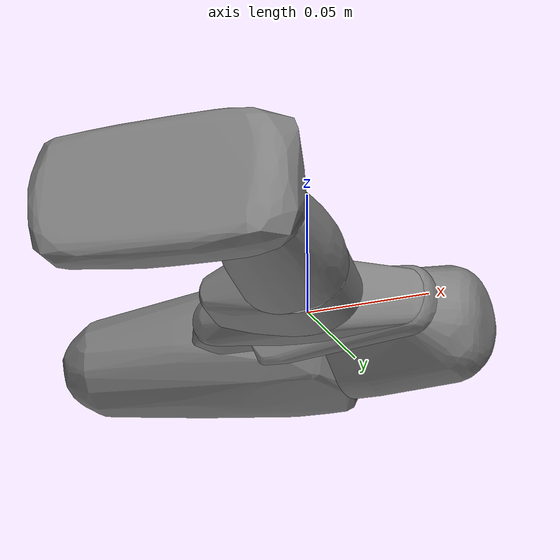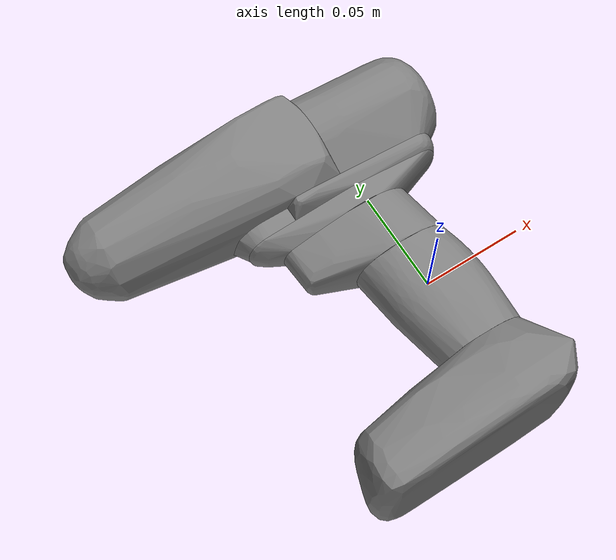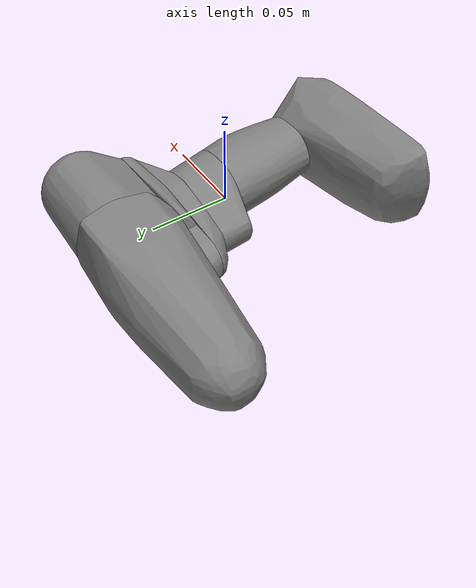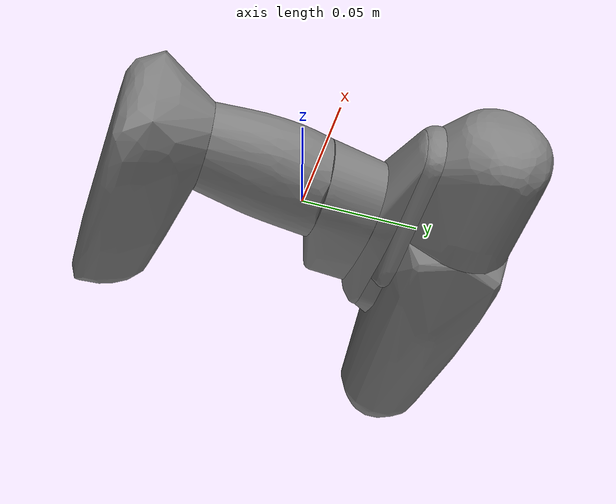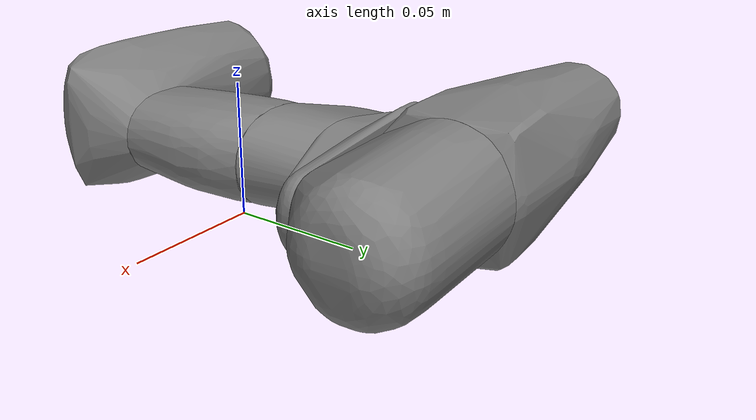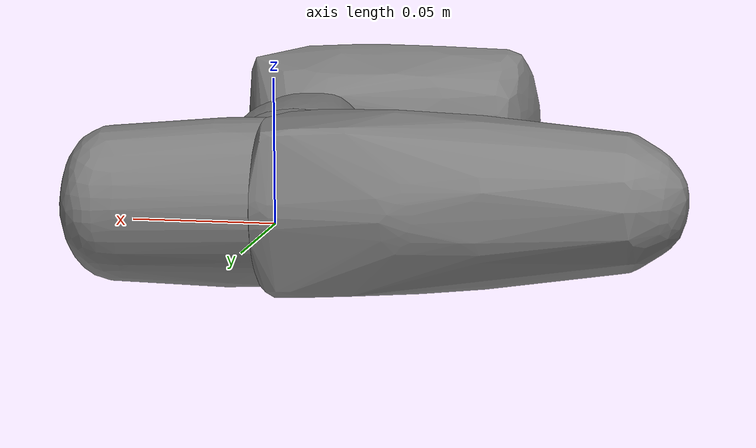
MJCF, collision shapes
<mujoco model="ycb_035_power_drill">
  <compiler meshdir="meshes" texturedir="meshes" angle="radian"/>
  <default>
    <default class="visual"><geom contype="0" conaffinity="0" group="2" density="0"/></default>
    <default class="collision"><geom group="3"/></default>
  </default>
  <asset>
    <texture name="ycb_035_power_drill_tex" type="2d" file="ycb_035_power_drill_texture.png"/>
    <material name="ycb_035_power_drill_mat" texture="ycb_035_power_drill_tex" specular="0.2" shininess="0.3"/>
    <mesh name="ycb_035_power_drill_visual" file="ycb_035_power_drill_visual.obj"/>
    <mesh name="ycb_035_power_drill_hull0" file="ycb_035_power_drill_hull0.obj"/>
    <mesh name="ycb_035_power_drill_hull1" file="ycb_035_power_drill_hull1.obj"/>
    <mesh name="ycb_035_power_drill_hull2" file="ycb_035_power_drill_hull2.obj"/>
    <mesh name="ycb_035_power_drill_hull3" file="ycb_035_power_drill_hull3.obj"/>
    <mesh name="ycb_035_power_drill_hull4" file="ycb_035_power_drill_hull4.obj"/>
    <mesh name="ycb_035_power_drill_hull5" file="ycb_035_power_drill_hull5.obj"/>
    <mesh name="ycb_035_power_drill_hull6" file="ycb_035_power_drill_hull6.obj"/>
    <mesh name="ycb_035_power_drill_hull7" file="ycb_035_power_drill_hull7.obj"/>
  </asset>
  <worldbody>
    <body name="object" pos="0 0 0">
      <freejoint name="object_free"/>
      <geom type="mesh" mesh="ycb_035_power_drill_visual" material="ycb_035_power_drill_mat" class="visual"/>
      <geom type="mesh" mesh="ycb_035_power_drill_hull0" class="collision"/>
      <geom type="mesh" mesh="ycb_035_power_drill_hull1" class="collision"/>
      <geom type="mesh" mesh="ycb_035_power_drill_hull2" class="collision"/>
      <geom type="mesh" mesh="ycb_035_power_drill_hull3" class="collision"/>
      <geom type="mesh" mesh="ycb_035_power_drill_hull4" class="collision"/>
      <geom type="mesh" mesh="ycb_035_power_drill_hull5" class="collision"/>
      <geom type="mesh" mesh="ycb_035_power_drill_hull6" class="collision"/>
      <geom type="mesh" mesh="ycb_035_power_drill_hull7" class="collision"/>
    </body>
  </worldbody>
</mujoco>
